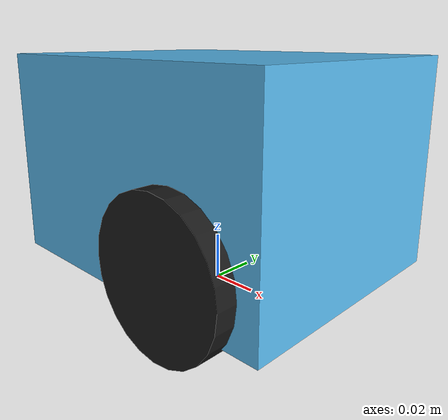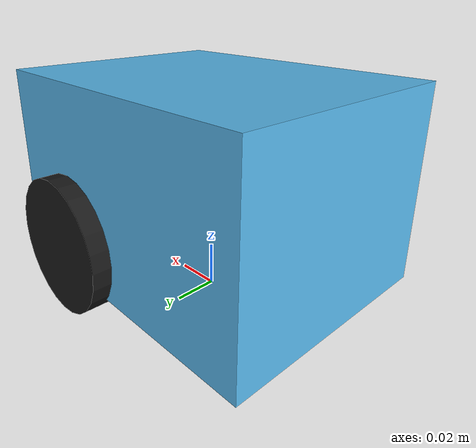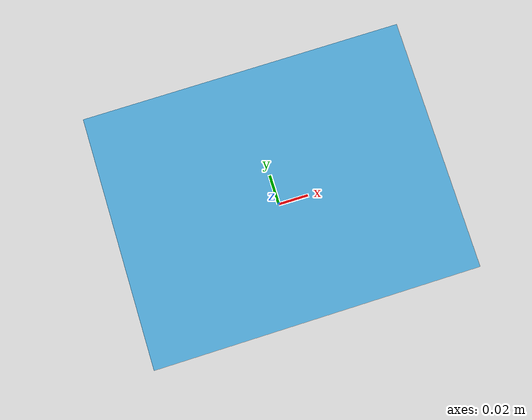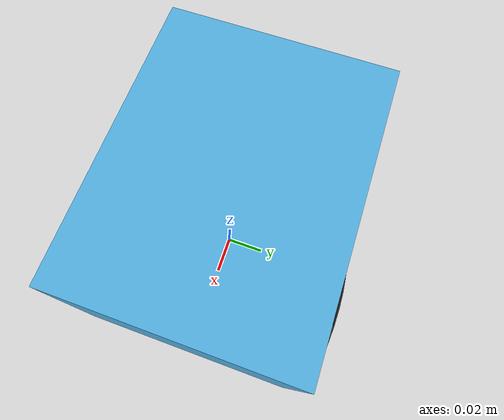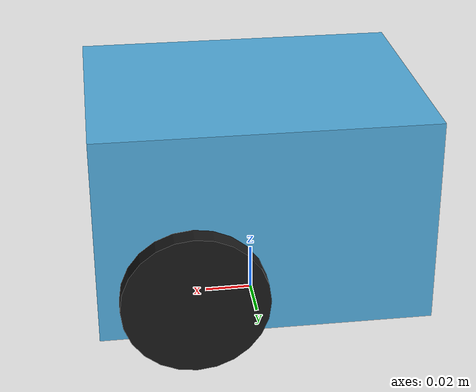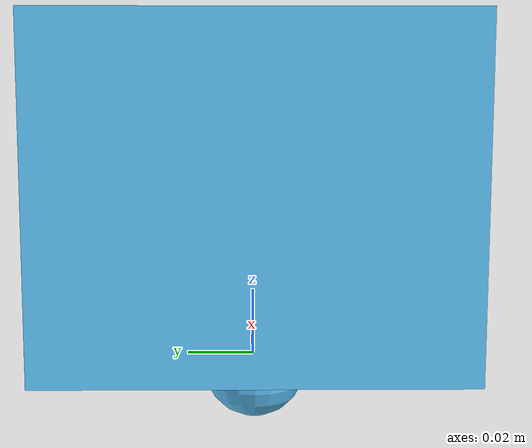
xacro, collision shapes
<?xml version="1.0"?>
<robot xmlns:xacro="http://www.ros.org/wiki/xacro" name="jetbot">

  <!-- file:// works for both RViz2 and Gazebo classic; package:// would need the ROS share dir on
       GAZEBO_MODEL_PATH, which makes gzclient's Insert panel complain about every non-model folder there -->
  <xacro:property name="mesh_dir"   value="file://$(find jetbot_ros)/models/jetbot/meshes"/>
  <xacro:property name="mesh_scale" value="0.001 0.001 0.001"/>
  <xacro:property name="mesh_rpy"   value="${pi/2} 0 ${pi/2}"/>

  <xacro:property name="body_length"    value="0.137"/>
  <xacro:property name="body_width"     value="0.106"/>
  <xacro:property name="body_height"    value="0.099"/>
  <xacro:property name="body_clearance" value="0.012"/>
  <xacro:property name="body_mass"      value="1.0"/>

  <xacro:property name="wheel_radius"      value="0.030"/>
  <xacro:property name="wheel_width"       value="0.012"/>
  <xacro:property name="wheel_mass"        value="0.1"/>
  <xacro:property name="wheel_x"           value="0.03"/>
  <xacro:property name="wheel_separation"  value="0.1106"/>
  <xacro:property name="wheel_mesh_offset" value="0.004"/>

  <xacro:property name="caster_radius" value="0.0127"/>
  <xacro:property name="caster_x"      value="-0.051"/>

  <xacro:property name="camera_xyz"   value="0.055 0 0.0857"/>
  <xacro:property name="camera_pitch" value="0.25"/>

  <material name="dark_grey">
    <color rgba="0.1 0.1 0.1 1"/>
  </material>

  <!-- ================= base ================= -->
  <!-- massless root on the ground (REP-120); KDL/robot_state_publisher needs an inertia-free root -->
  <link name="base_footprint"/>

  <joint name="base_footprint_joint" type="fixed">
    <parent link="base_footprint"/>
    <child link="chassis"/>
  </joint>

  <!-- ================= chassis ================= -->
  <link name="chassis">
    <visual>
      <origin xyz="0 0 0.043" rpy="${mesh_rpy}"/>
      <geometry>
        <mesh filename="${mesh_dir}/JetBot-v3-Chassis.dae" scale="${mesh_scale}"/>
      </geometry>
    </visual>
    <collision>
      <origin xyz="0 0 ${body_clearance + (body_height - body_clearance) / 2}"/>
      <geometry>
        <box size="${body_length} ${body_width} ${body_height - body_clearance}"/>
      </geometry>
    </collision>
    <collision>
      <origin xyz="${caster_x} 0 ${caster_radius}"/>
      <geometry>
        <sphere radius="${caster_radius}"/>
      </geometry>
    </collision>
    <inertial>
      <origin xyz="0 0 0.05"/>
      <mass value="${body_mass}"/>
      <inertia ixx="${body_mass * (body_width**2 + body_height**2) / 12}" ixy="0" ixz="0"
               iyy="${body_mass * (body_length**2 + body_height**2) / 12}" iyz="0"
               izz="${body_mass * (body_length**2 + body_width**2) / 12}"/>
    </inertial>
  </link>

  <!-- the caster is the only part of the chassis that touches the ground; let it slide -->
  <gazebo reference="chassis">
    <mu1>0.0</mu1>
    <mu2>0.0</mu2>
  </gazebo>

  <!-- ================= wheels ================= -->
  <xacro:macro name="wheel" params="prefix side">
    <link name="${prefix}_wheel">
      <visual>
        <origin xyz="0 ${-wheel_mesh_offset} 0" rpy="0 0 ${pi/2}"/>
        <geometry>
          <mesh filename="${mesh_dir}/JetBot-v3-Wheel.stl" scale="${mesh_scale}"/>
        </geometry>
        <material name="dark_grey"/>
      </visual>
      <collision>
        <origin xyz="0 0 0" rpy="${pi/2} 0 0"/>
        <geometry>
          <cylinder radius="${wheel_radius}" length="${wheel_width}"/>
        </geometry>
      </collision>
      <inertial>
        <mass value="${wheel_mass}"/>
        <inertia ixx="${wheel_mass * (3 * wheel_radius**2 + wheel_width**2) / 12}" ixy="0" ixz="0"
                 iyy="${wheel_mass * wheel_radius**2 / 2}" iyz="0"
                 izz="${wheel_mass * (3 * wheel_radius**2 + wheel_width**2) / 12}"/>
      </inertial>
    </link>

    <joint name="${prefix}_wheel_hinge" type="continuous">
      <parent link="chassis"/>
      <child link="${prefix}_wheel"/>
      <origin xyz="${wheel_x} ${side * wheel_separation / 2} ${wheel_radius}"/>
      <axis xyz="0 1 0"/>
    </joint>

    <gazebo reference="${prefix}_wheel">
      <mu1>1.0</mu1>
      <mu2>1.0</mu2>
      <material>Gazebo/DarkGrey</material>
    </gazebo>
  </xacro:macro>

  <xacro:wheel prefix="left"  side="1"/>
  <xacro:wheel prefix="right" side="-1"/>

  <!-- ================= camera ================= -->
  <link name="camera_link">
    <inertial>
      <mass value="0.01"/>
      <inertia ixx="1e-6" ixy="0" ixz="0" iyy="1e-6" iyz="0" izz="1e-6"/>
    </inertial>
  </link>

  <joint name="camera_joint" type="fixed">
    <parent link="chassis"/>
    <child link="camera_link"/>
    <origin xyz="${camera_xyz}" rpy="0 ${camera_pitch} 0"/>
  </joint>

  <!-- ROS optical convention: z forward, x right, y down -->
  <link name="camera_optical_frame"/>

  <joint name="camera_optical_joint" type="fixed">
    <parent link="camera_link"/>
    <child link="camera_optical_frame"/>
    <origin xyz="0 0 0" rpy="${-pi/2} 0 ${-pi/2}"/>
  </joint>

  <gazebo reference="camera_link">
    <sensor name="camera" type="camera">
      <always_on>true</always_on>
      <update_rate>10</update_rate>
      <visualize>true</visualize>
      <camera>
        <horizontal_fov>2.0</horizontal_fov>
        <image>
          <width>320</width>
          <height>240</height>
          <format>R8G8B8</format>
        </image>
        <clip>
          <near>0.01</near>
          <far>20</far>
        </clip>
      </camera>
      <plugin name="camera_controller" filename="libgazebo_ros_camera.so">
        <ros>
          <namespace>/jetbot</namespace>
        </ros>
        <camera_name>camera</camera_name>
        <frame_name>camera_optical_frame</frame_name>
      </plugin>
    </sensor>
  </gazebo>

  <!-- ================= ROS 2 plugins ================= -->
  <gazebo>
    <plugin name="diff_drive" filename="libgazebo_ros_diff_drive.so">
      <ros>
        <namespace>/jetbot</namespace>
      </ros>
      <update_rate>50</update_rate>

      <left_joint>left_wheel_hinge</left_joint>
      <right_joint>right_wheel_hinge</right_joint>
      <wheel_separation>${wheel_separation}</wheel_separation>
      <wheel_diameter>${2 * wheel_radius}</wheel_diameter>

      <max_wheel_torque>1.0</max_wheel_torque>
      <max_wheel_acceleration>3.0</max_wheel_acceleration>

      <publish_odom>true</publish_odom>
      <publish_odom_tf>true</publish_odom_tf>
      <!-- wheel TFs come from robot_state_publisher via /joint_states instead -->
      <publish_wheel_tf>false</publish_wheel_tf>

      <odometry_frame>odom</odometry_frame>
      <robot_base_frame>base_footprint</robot_base_frame>
    </plugin>

    <plugin name="joint_states" filename="libgazebo_ros_joint_state_publisher.so">
      <ros>
        <namespace>/jetbot</namespace>
      </ros>
      <update_rate>50</update_rate>
      <joint_name>left_wheel_hinge</joint_name>
      <joint_name>right_wheel_hinge</joint_name>
    </plugin>
  </gazebo>

</robot>
